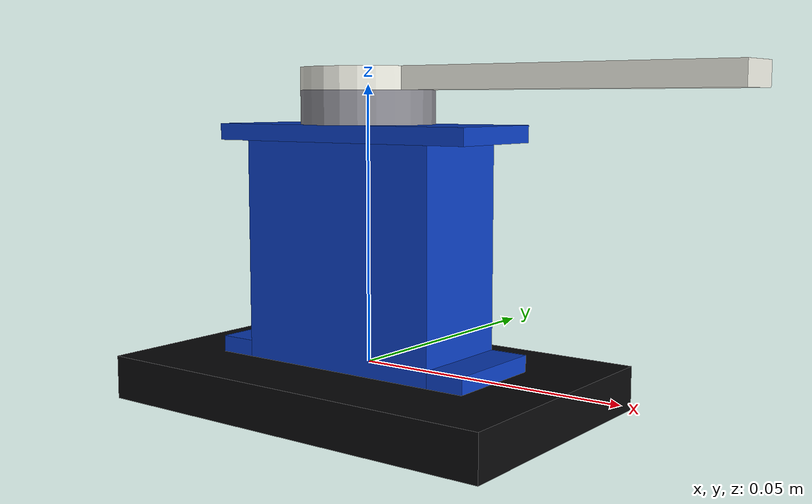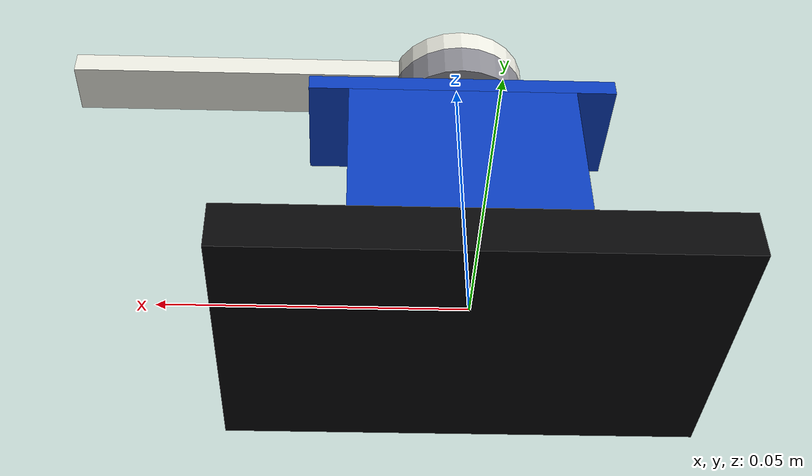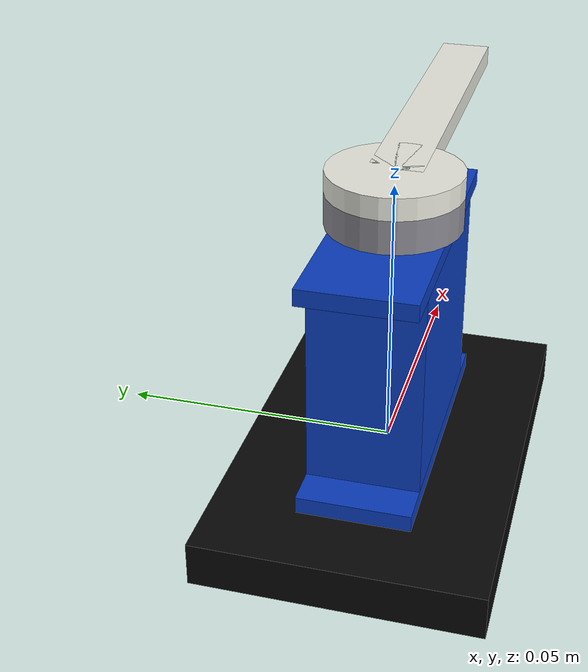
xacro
<?xml version="1.0"?>
<robot xmlns:xacro="http://www.ros.org/wiki/xacro" name="one_joint_servo">
  <xacro:arg name="servo_model" default="sts3215"/>
  <xacro:arg name="joint_name" default="servo_output_joint"/>
  <xacro:arg name="parent_link" default="base_link"/>
  <xacro:arg name="joint_limit_lower" default="-3.14159"/>
  <xacro:arg name="joint_limit_upper" default="3.14159"/>
  <xacro:arg name="joint_effort" default="4.0"/>
  <xacro:arg name="joint_velocity" default="6.0"/>

  <!-- Defaults are close to common SMS/STS smart servos and are easy to tune per model. -->
  <xacro:property name="case_x" value="0.040"/>
  <xacro:property name="case_y" value="0.020"/>
  <xacro:property name="case_z" value="0.040"/>
  <xacro:property name="ear_x" value="0.054"/>
  <xacro:property name="ear_y" value="0.020"/>
  <xacro:property name="ear_z" value="0.003"/>
  <xacro:property name="horn_radius" value="0.012"/>
  <xacro:property name="horn_length" value="0.070"/>
  <xacro:property name="horn_thickness" value="0.004"/>
  <xacro:property name="shaft_radius" value="0.003"/>
  <xacro:property name="shaft_length" value="0.006"/>
  <xacro:property name="servo_mass" value="0.055"/>
  <xacro:property name="horn_mass" value="0.010"/>

  <xacro:macro name="box_inertial" params="mass x y z">
    <inertial>
      <mass value="${mass}"/>
      <origin xyz="0 0 0" rpy="0 0 0"/>
      <inertia
        ixx="${mass * (y * y + z * z) / 12.0}"
        ixy="0"
        ixz="0"
        iyy="${mass * (x * x + z * z) / 12.0}"
        iyz="0"
        izz="${mass * (x * x + y * y) / 12.0}"/>
    </inertial>
  </xacro:macro>

  <link name="$(arg parent_link)">
    <visual>
      <origin xyz="0 0 -0.004" rpy="0 0 0"/>
      <geometry>
        <box size="0.080 0.050 0.008"/>
      </geometry>
      <material name="base_black">
        <color rgba="0.03 0.03 0.035 1.0"/>
      </material>
    </visual>
    <collision>
      <origin xyz="0 0 -0.004" rpy="0 0 0"/>
      <geometry>
        <box size="0.080 0.050 0.008"/>
      </geometry>
    </collision>
  </link>

  <link name="servo_case">
    <xacro:box_inertial mass="${servo_mass}" x="${case_x}" y="${case_y}" z="${case_z}"/>
    <visual name="case">
      <origin xyz="0 0 ${case_z / 2.0}" rpy="0 0 0"/>
      <geometry>
        <box size="${case_x} ${case_y} ${case_z}"/>
      </geometry>
      <material name="servo_blue">
        <color rgba="0.04 0.24 0.75 1.0"/>
      </material>
    </visual>
    <visual name="top_mount_ear">
      <origin xyz="0 0 ${case_z + ear_z / 2.0}" rpy="0 0 0"/>
      <geometry>
        <box size="${ear_x} ${ear_y} ${ear_z}"/>
      </geometry>
      <material name="servo_blue"/>
    </visual>
    <visual name="bottom_mount_ear">
      <origin xyz="0 0 ${ear_z / 2.0}" rpy="0 0 0"/>
      <geometry>
        <box size="${ear_x} ${ear_y} ${ear_z}"/>
      </geometry>
      <material name="servo_blue"/>
    </visual>
    <visual name="output_boss">
      <origin xyz="0 0 ${case_z + ear_z + shaft_length / 2.0}" rpy="0 0 0"/>
      <geometry>
        <cylinder radius="${horn_radius}" length="${shaft_length}"/>
      </geometry>
      <material name="shaft_gray">
        <color rgba="0.55 0.55 0.58 1.0"/>
      </material>
    </visual>
    <collision>
      <origin xyz="0 0 ${case_z / 2.0}" rpy="0 0 0"/>
      <geometry>
        <box size="${case_x} ${case_y} ${case_z}"/>
      </geometry>
    </collision>
  </link>

  <joint name="servo_mount_joint" type="fixed">
    <parent link="$(arg parent_link)"/>
    <child link="servo_case"/>
    <origin xyz="0 0 0" rpy="0 0 0"/>
  </joint>

  <link name="servo_horn">
    <xacro:box_inertial
      mass="${horn_mass}"
      x="${horn_length}"
      y="${horn_radius * 2.0}"
      z="${horn_thickness}"/>
    <visual name="round_horn_center">
      <origin xyz="0 0 0" rpy="0 0 0"/>
      <geometry>
        <cylinder radius="${horn_radius}" length="${horn_thickness}"/>
      </geometry>
      <material name="horn_white">
        <color rgba="0.92 0.92 0.88 1.0"/>
      </material>
    </visual>
    <visual name="horn_arm">
      <origin xyz="${horn_length / 2.0} 0 0" rpy="0 0 0"/>
      <geometry>
        <box size="${horn_length} ${horn_radius * 0.8} ${horn_thickness}"/>
      </geometry>
      <material name="horn_white"/>
    </visual>
    <collision>
      <origin xyz="${horn_length / 2.0} 0 0" rpy="0 0 0"/>
      <geometry>
        <box size="${horn_length} ${horn_radius * 2.0} ${horn_thickness}"/>
      </geometry>
    </collision>
  </link>

  <joint name="$(arg joint_name)" type="revolute">
    <parent link="servo_case"/>
    <child link="servo_horn"/>
    <origin xyz="0 0 ${case_z + ear_z + shaft_length + horn_thickness / 2.0}" rpy="0 0 0"/>
    <axis xyz="0 0 1"/>
    <limit
      lower="$(arg joint_limit_lower)"
      upper="$(arg joint_limit_upper)"
      effort="$(arg joint_effort)"
      velocity="$(arg joint_velocity)"/>
  </joint>

  <gazebo reference="servo_case">
    <material>Gazebo/Blue</material>
  </gazebo>
  <gazebo reference="servo_horn">
    <material>Gazebo/White</material>
  </gazebo>
</robot>
